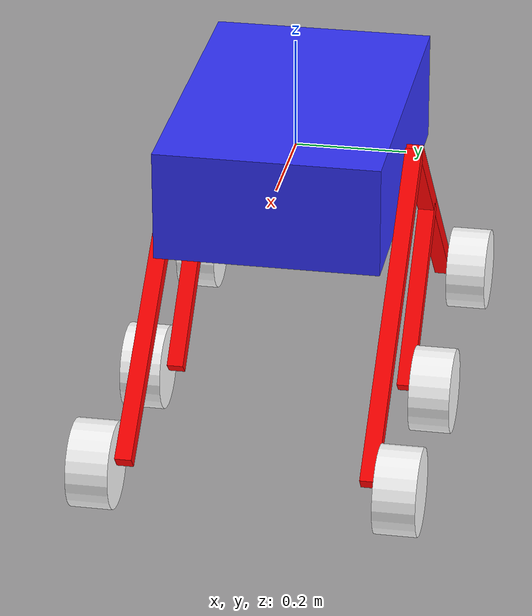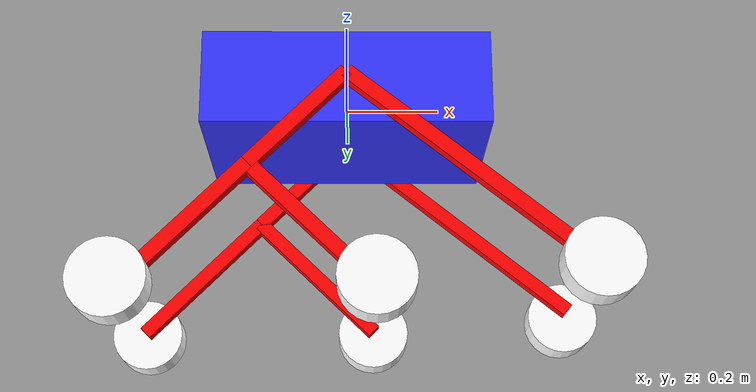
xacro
<?xml version="1.0"?>
<robot xmlns:xacro="http://www.ros.org/wiki/xacro" >

    <xacro:include filename="inertial_macros.xacro"/>

    <material name="white">
        <color rgba="1 1 1 1" />
    </material>

    <material name="orange">
        <color rgba="1 0.3 0.1 1"/>
    </material>

    <material name="blue">
        <color rgba="0.2 0.2 1 1"/>
    </material>

    <material name="black">
        <color rgba="0 0 0 1"/>
    </material>

    <material name="red">
        <color rgba="1 0 0 1"/>
    </material>

    <!-- BASE LINK -->

    <link name="base_link">
    </link>

 <!-- BASEFOOTPRINT LINK -->

    <joint name="base_footprint_joint" type="fixed">
        <parent link="base_footprint"/>
        <child link="base_link"/>
        <origin xyz="0 0 0 " rpy="0 0 0"/>
    </joint>
    <link name="base_footprint">
    </link>

    <!-- CHASSIS LINK -->

    <joint name="chassis_joint" type="fixed">
        <parent link="base_link"/>
        <child link="chassis"/>
        <origin xyz="0 0 0"/>
    </joint>

    <link name="chassis">
        <visual>
            <geometry>
                <box size="0.6 0.4 0.2"/>
            </geometry>
            <origin xyz="0 0 0" rpy="0 0 0"/>
            <material name="blue"/>
        </visual>
        <collision>
            <geometry>
                <box size="0.6 0.4 0.2"/>
            </geometry>
            <origin xyz="0 0 0" rpy="0 0 0"/>
        </collision>
        <xacro:inertial_box mass="1" x="0.6" y="0.4" z="0.2">
            <origin xyz="0 0 0" rpy="0 0 0"/>
        </xacro:inertial_box>
    </link>

    <gazebo reference="chassis">
        <material>Gazebo/White</material>
    </gazebo>

    <link name="left_diff_link" />

    <joint name="left_diff_joint" type="fixed">
        <parent link="base_link"/>
        <child link="left_diff_link"/>
        <axis xyz="0 0 1"/>
        <origin rpy="-${pi/2} 0 0" xyz="0 0.215 0"/>
        <limit lower="-3.14" upper="3.14" effort="10" velocity="1"/>
    </joint>

    <link name="l_rod_1">
        <visual>
            <geometry>
                <box size="0.03 0.03 0.64"/>
            </geometry>
            <material name="red"/>
            <origin xyz="0 0 -0.32" rpy="0 0 0"/>
        </visual>
        <collision>
            <geometry>
                <box size="0.03 0.03 0.64"/>
            </geometry>
            <material name="red"/>
            <origin xyz="0 0 -0.32" rpy="0 0 0"/>
        </collision>
        <xacro:inertial_box mass="0.5" x="0.03" y="0.03" z="0.64">
            <origin xyz="0 0 -0.32" rpy="0 0 0"/>
        </xacro:inertial_box>
    </link>

    <link name="l_rod_2">
        <visual>
            <geometry>
                <box size="0.03 0.03 0.28"/>
            </geometry>
            <material name="red"/>
            <origin xyz="0 0 -0.14" rpy="0 0 0"/>
        </visual>
        <collision>
            <geometry>
                <box size="0.03 0.03 0.28"/>
            </geometry>
            <material name="red"/>
            <origin xyz="0 0 -0.14" rpy="0 0 0"/>
        </collision>
        <xacro:inertial_box mass="0.5" x="0.03" y="0.03" z="0.28">
            <origin xyz="0 0 -0.14" rpy="0 0 0"/>
        </xacro:inertial_box>

    </link>

    <link name="left_rod2_sub_link" />

    <link name="l_rod_3">
        <visual>
            <geometry>
                <box size="0.03 0.03 0.36"/>
            </geometry>
            <material name="red"/>
            <origin xyz="0 0 -0.18" rpy="0 0 0"/>
        </visual>
        <collision>
            <geometry>
                <box size="0.03 0.03 0.36"/>
            </geometry>
            <material name="red"/>
            <origin xyz="0 0 -0.18" rpy="0 0 0"/>
        </collision>
        <xacro:inertial_box mass="0.5" x="0.03" y="0.03" z="0.36">
            <origin xyz="0 0 -0.18" rpy="0 0 0"/>
        </xacro:inertial_box>
    </link>

    <link name="l_rod_4">
        <visual>
            <geometry>
                <box size="0.03 0.03 0.36"/>
            </geometry>
            <material name="red"/>
            <origin xyz="0 0 -0.18" rpy="0 0 0"/>
        </visual>
        <collision>
            <geometry>
                <box size="0.03 0.03 0.36"/>
            </geometry>
            <material name="red"/>
            <origin xyz="0 0 -0.18" rpy="0 0 0"/>
        </collision>
        <xacro:inertial_box mass="0.5" x="0.03" y="0.03" z="0.36">
            <origin xyz="0 0 -0.18" rpy="0 0 0"/>
        </xacro:inertial_box>
    </link>

    <joint name="left_diff_rod1" type="fixed">
        <parent link="left_diff_link"/>
        <child link="l_rod_1"/>
        <axis xyz="0 0 1"/>
        <origin rpy="${pi/2} 0 -0.895" xyz="0 0 0"/>
    </joint>

    <joint name="left_diff_rod2" type="fixed">
        <parent link="left_diff_link"/>
        <child link="l_rod_2"/>
        <axis xyz="0 0 1"/>
        <origin rpy="${pi/2} 0 0.785" xyz="0 0 0"/>
    </joint>

    <joint name="left_rod2_sub_rod1_joint" type="fixed">
        <parent link="left_rod2_sub_link"/>
        <child link="l_rod_3"/>
        <origin rpy="${pi/2} 0 0" xyz="0 0 0"/>
    </joint>

    <joint name="left_rod2_sub_joint" type="continuous">
        <parent link="l_rod_2"/>
        <child link="left_rod2_sub_link"/>
        <axis xyz="0 0 1"/>
        <origin rpy="-${pi/2} 0 0" xyz="0 0 -0.28"/>
        <limit lower="-3.14" upper="3.14" effort="10" velocity="1"/>
    </joint>

    <joint name="left_rod2_sub_rod2_joint" type="fixed">
        <parent link="left_rod2_sub_link"/>
        <child link="l_rod_4"/>
        <origin rpy="${pi/2} 0 -1.588" xyz="0 0 0"/>
    </joint>

    <link name="right_diff_link" />

    <link name="r_rod_1">
        <visual>
            <geometry>
                <box size="0.03 0.03 0.64"/>
            </geometry>
            <material name="red"/>
            <origin xyz="0 0 -0.32" rpy="0 0 0"/>
        </visual>
        <collision>
            <geometry>
                <box size="0.03 0.03 0.64"/>
            </geometry>
            <material name="red"/>
            <origin xyz="0 0 -0.32" rpy="0 0 0"/>
        </collision>
        <xacro:inertial_box mass="0.5" x="0.03" y="0.03" z="0.64">
            <origin xyz="0 0 -0.32" rpy="0 0 0"/>
        </xacro:inertial_box>
    </link>

    <link name="r_rod_2">
        <visual>
            <geometry>
                <box size="0.03 0.03 0.28"/>
            </geometry>
            <material name="red"/>

            <origin xyz="0 0 -0.14" rpy="0 0 0"/>
        </visual>
        <collision>
            <geometry>
                <box size="0.03 0.03 0.28"/>
            </geometry>
            <material name="red"/>

            <origin xyz="0 0 -0.14" rpy="0 0 0"/>
        </collision>
        <xacro:inertial_box mass="0.5" x="0.03" y="0.03" z="0.28">
            <origin xyz="0 0 -0.14" rpy="0 0 0"/>
        </xacro:inertial_box>
    </link>

    <link name="right_rod2_sub_link" />

    <link name="r_rod_3">
        <visual>
            <geometry>
                <box size="0.03 0.03 0.36"/>
            </geometry>
            <material name="red"/>
            <origin xyz="0 0 -0.18" rpy="0 0 0"/>
        </visual>
        <collision>
            <geometry>
                <box size="0.03 0.03 0.36"/>
            </geometry>
            <material name="red"/>
            <origin xyz="0 0 -0.18" rpy="0 0 0"/>
        </collision>
        <xacro:inertial_box mass="0.5" x="0.03" y="0.03" z="0.36">
            <origin xyz="0 0 -0.18" rpy="0 0 0"/>
        </xacro:inertial_box>
    </link>

    <link name="r_rod_4">
        <visual>
            <geometry>
                <box size="0.03 0.03 0.36"/>
            </geometry>
            <material name="red"/>
            <origin xyz="0 0 -0.18" rpy="0 0 0"/>
        </visual>
        <collision>
            <geometry>
                <box size="0.03 0.03 0.36"/>
            </geometry>
            <material name="red"/>
            <origin xyz="0 0 -0.18" rpy="0 0 0"/>
        </collision>
        <xacro:inertial_box mass="0.5" x="0.03" y="0.03" z="0.36">
            <origin xyz="0 0 -0.18" rpy="0 0 0"/>
        </xacro:inertial_box>
    </link>

    <joint name="right_diff_joint" type="fixed">
        <parent link="base_link"/>
        <child link="right_diff_link"/>
        <axis xyz="0 0 1"/>
        <origin rpy="-${pi/2} 0 0" xyz="0 -0.215 0"/>
        <limit lower="-3.14" upper="3.14" effort="10" velocity="1"/>
    </joint>

    <joint name="right_diff_rod1" type="fixed">
        <parent link="right_diff_link"/>
        <child link="r_rod_1"/>
        <axis xyz="0 0 1"/>
        <origin rpy="${pi/2} 0 -0.895" xyz="0 0 0"/>
    </joint>

    <joint name="right_diff_rod2" type="fixed">
        <parent link="right_diff_link"/>
        <child link="r_rod_2"/>
        <axis xyz="0 0 1"/>
        <origin rpy="${pi/2} 0 0.785" xyz="0 0 0"/>
    </joint>

    <joint name="right_rod2_sub_joint" type="continuous">
        <parent link="r_rod_2"/>
        <child link="right_rod2_sub_link"/>
        <axis xyz="0 0 1"/>
        <origin rpy="-${pi/2} 0 0" xyz="0 0 -0.28"/>
        <limit lower="-3.14" upper="3.14" effort="10" velocity="1"/>
    </joint>

    <joint name="right_rod2_sub_rod1_joint" type="fixed">
        <parent link="right_rod2_sub_link"/>
        <child link="r_rod_3"/>
        <origin rpy="${pi/2} 0 0" xyz="0 0 0"/>
    </joint>

    <joint name="right_rod2_sub_rod2_joint" type="fixed">
        <parent link="right_rod2_sub_link"/>
        <child link="r_rod_4"/>
        <origin rpy="${pi/2} 0 -1.588" xyz="0 0 0"/>
    </joint>

   <link name="left_wheel1">
        <visual>
            <geometry>
                <cylinder radius="0.078" length="0.075"/>
            </geometry>
            <origin xyz="0 0 0.0525" rpy="0 0 0"/>
            <material name="white"/>
        </visual>
        <collision>
            <geometry>
                <cylinder radius="0.078" length="0.075"/>
            </geometry>
            <origin xyz="0 0 0.0525" rpy="0 0 0"/>
            <material name="white"/>
        </collision>
        <xacro:inertial_cylinder mass="0.5" radius="0.078" length="0.075" >
            <origin xyz="0 0 0.0525" rpy="0 0 0"/>
        </xacro:inertial_cylinder>
    </link>

    <link name="left_wheel2">
        <visual>
            <geometry>
                <cylinder radius="0.078" length="0.075"/>
            </geometry>
            <origin xyz="0 0 0.0525" rpy="0 0 0"/>
            <material name="white"/>
        </visual>
        <collision>
            <geometry>
                <cylinder radius="0.078" length="0.075"/>
            </geometry>
            <origin xyz="0 0 0.0525" rpy="0 0 0"/>
            <material name="white"/>
        </collision>
        <xacro:inertial_cylinder mass="0.5" radius="0.078" length="0.075" >
            <origin xyz="0 0 0.0525" rpy="0 0 0"/>
        </xacro:inertial_cylinder>
    </link>

    <link name="left_wheel3">
        <visual>
            <geometry>
                <cylinder radius="0.078" length="0.075"/>
            </geometry>
            <origin xyz="0 0 0.0525" rpy="0 0 0"/>
            <material name="white"/>
        </visual>
        <collision>
            <geometry>
                <cylinder radius="0.078" length="0.075"/>
            </geometry>
            <origin xyz="0 0 0.0525" rpy="0 0 0"/>
            <material name="white"/>
        </collision>
        <xacro:inertial_cylinder mass="0.5" radius="0.078" length="0.075" >
            <origin xyz="0 0 0.0525" rpy="0 0 0"/>
        </xacro:inertial_cylinder>
    </link>

    <link name="right_wheel1">
        <visual>
            <geometry>
                <cylinder radius="0.078" length="0.075"/>
            </geometry>
            <origin xyz="0 0 0.0525" rpy="0 0 0"/>
            <material name="white"/>
        </visual>
        <collision>
            <geometry>
                <cylinder radius="0.078" length="0.075"/>
            </geometry>
            <origin xyz="0 0 0.0525" rpy="0 0 0"/>
            <material name="white"/>
        </collision>
        <xacro:inertial_cylinder mass="0.5" radius="0.078" length="0.075" >
            <origin xyz="0 0 0.0525" rpy="0 0 0"/>
        </xacro:inertial_cylinder>
    </link>

    <link name="right_wheel2">
        <visual>
            <geometry>
                <cylinder radius="0.078" length="0.075"/>
            </geometry>
            <origin xyz="0 0 0.0525" rpy="0 0 0"/>
            <material name="white"/>
        </visual>
        <collision>
            <geometry>
                <cylinder radius="0.078" length="0.075"/>
            </geometry>
            <origin xyz="0 0 0.0525" rpy="0 0 0"/>
            <material name="white"/>
        </collision>
        <xacro:inertial_cylinder mass="0.5" radius="0.078" length="0.075" >
            <origin xyz="0 0 0.0525" rpy="0 0 0"/>
        </xacro:inertial_cylinder>
    </link>

    <link name="right_wheel3">
        <visual>
            <geometry>
                <cylinder radius="0.078" length="0.075"/>
            </geometry>
            <origin xyz="0 0 0.0525" rpy="0 0 0"/>
            <material name="white"/>
        </visual>
        <collision>
            <geometry>
                <cylinder radius="0.078" length="0.075"/>
            </geometry>
            <origin xyz="0 0 0.0525" rpy="0 0 0"/>
            <material name="white"/>
        </collision>
        <xacro:inertial_cylinder mass="0.5" radius="0.078" length="0.075" >
            <origin xyz="0 0 0.0525" rpy="0 0 0"/>
        </xacro:inertial_cylinder>
    </link>

    <joint name="rear_left_wheel_joint" type="continuous">
        <parent link="l_rod_3"/>
        <child link="left_wheel2"/>
        <axis xyz="0 0 1"/>
        <origin rpy="-${pi/2} 0 0" xyz="0  0 -0.358"   />
   </joint>

   <joint name="rear_right_wheel_joint" type="continuous">
        <parent link="r_rod_3"/>
        <child link="right_wheel2"/>
        <axis xyz="0 0 -1"/>
        <origin rpy="${pi/2} 0 0" xyz="0  0 -0.358"   />
   </joint>

    <joint name="middle_left_wheel_joint" type="continuous">
        <parent link="l_rod_4"/>
        <child link="left_wheel3"/>
        <axis xyz="0 0 1"/>
        <origin rpy="-${pi/2} 0 0" xyz="0  0 -0.358"/>
   </joint>

   <joint name="middle_right_wheel_joint" type="continuous">
        <parent link="r_rod_4"/>
        <child link="right_wheel3"/>
        <axis xyz="0 0 -1"/>
        <origin rpy="${pi/2} 0 0" xyz="0  0 -0.358"/>
   </joint>

    <joint name="front_right_wheel_joint" type="continuous">
        <parent link="base_footprint"/>
        <child link="right_wheel1"/>
        <axis xyz="0 0 -1"/>
        <origin xyz="0.49 -0.215 -0.4117" rpy="${pi/2} 0 0"/>
   </joint>

   <joint name="front_left_wheel_joint" type="continuous">
        <parent link="base_footprint"/>
        <child link="left_wheel1"/>
        <axis xyz="0 0 1"/>
        <origin xyz="0.49 0.215 -0.4117" rpy="-${pi/2} 0 0"/>
   </joint>

    <gazebo reference="left_wheel2">
        <material>Gazebo/Grey</material>
        <mu1 value="0.2"/>
        <mu2 value="0.195"/>
    </gazebo>
    <gazebo reference="left_wheel1">
        <material>Gazebo/Grey</material>
        <mu1 value="0.1"/>
        <mu2 value="0.095"/>
    </gazebo>
    <gazebo reference="right_wheel2">
        <material>Gazebo/Grey</material>
        <mu1 value="0.2"/>
        <mu2 value="0.195"/>
    </gazebo>
    <gazebo reference="right_wheel1">
        <material>Gazebo/Grey</material>
        <mu1 value="0.1"/>
        <mu2 value="0.095"/>
    </gazebo>

</robot>
